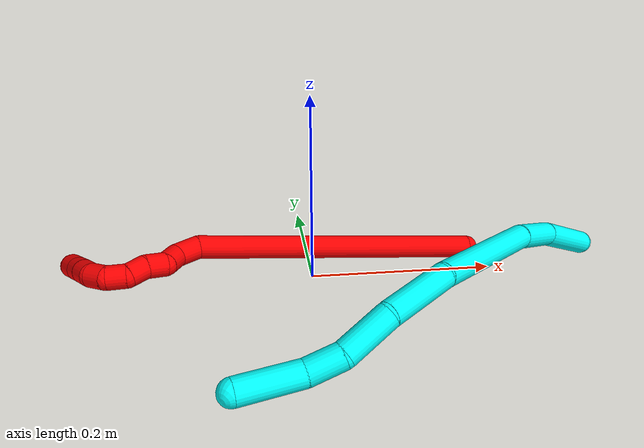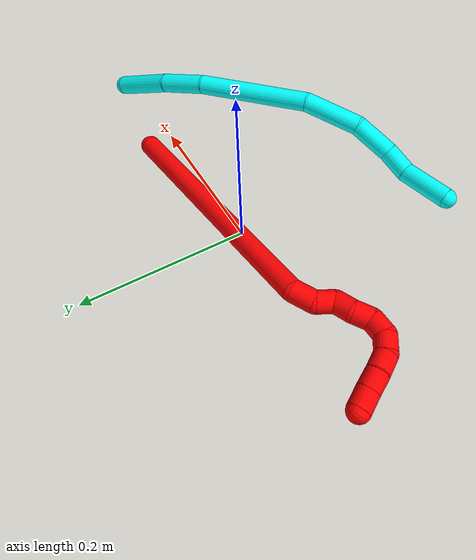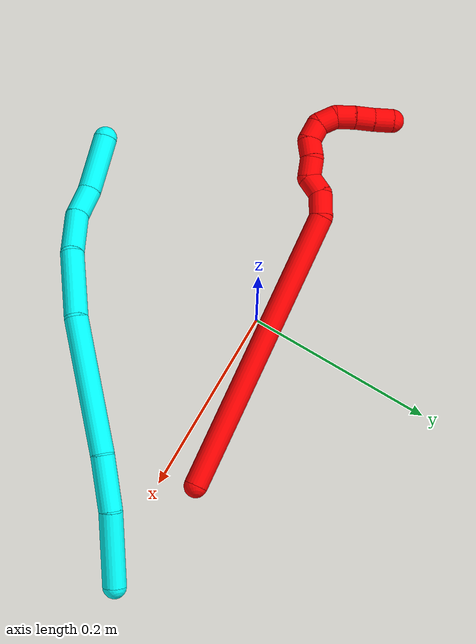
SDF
<sdf version="1.7">
 <world name="default">
  <model name="2">
   <static>0</static>
   <link name="2">
    <collision name="collision-cylinder-e_1_1_4">
     <pose>-0.095933 -0.015489 -0.119954 3.01317 -0.67056 -2.77664</pose>
     <geometry><cylinder><radius>0.0125</radius><length>0.308753</length></cylinder></geometry>
     <surface>
      <friction><ode><mu>1.16</mu><mu2>1.16</mu2><slip1>0</slip1><slip2>0</slip2></ode></friction>
      <contact><ode><kp>1e+06</kp><kd>1</kd><max_vel>0</max_vel><min_depth>0.001</min_depth></ode></contact>
     </surface>
    </collision>
    <visual name="visual-cylinder-e_1_1_4">
     <pose>-0.095933 -0.015489 -0.119954 3.01317 -0.67056 -2.77664</pose>
     <geometry><cylinder><radius>0.0125</radius><length>0.308753</length></cylinder></geometry>
     <material><ambient>1 0 0 1</ambient></material>
    </visual>
    <collision name="collision-cylinder-e_2_4_5">
     <pose>-0.194218 -0.03368 -0.252413 2.92888 -0.18172 -1.41296</pose>
     <geometry><cylinder><radius>0.0125</radius><length>0.026015</length></cylinder></geometry>
     <surface>
      <friction><ode><mu>1.16</mu><mu2>1.16</mu2><slip1>0</slip1><slip2>0</slip2></ode></friction>
      <contact><ode><kp>1e+06</kp><kd>1</kd><max_vel>0</max_vel><min_depth>0.001</min_depth></ode></contact>
     </surface>
    </collision>
    <visual name="visual-cylinder-e_2_4_5">
     <pose>-0.194218 -0.03368 -0.252413 2.92888 -0.18172 -1.41296</pose>
     <geometry><cylinder><radius>0.0125</radius><length>0.026015</length></cylinder></geometry>
     <material><ambient>1 0 0 1</ambient></material>
    </visual>
    <collision name="collision-cylinder-e_3_5_6">
     <pose>-0.193649 -0.041867 -0.273531 2.57442 0.278439 0.896339</pose>
     <geometry><cylinder><radius>0.0125</radius><length>0.021243</length></cylinder></geometry>
     <surface>
      <friction><ode><mu>1.16</mu><mu2>1.16</mu2><slip1>0</slip1><slip2>0</slip2></ode></friction>
      <contact><ode><kp>1e+06</kp><kd>1</kd><max_vel>0</max_vel><min_depth>0.001</min_depth></ode></contact>
     </surface>
    </collision>
    <visual name="visual-cylinder-e_3_5_6">
     <pose>-0.193649 -0.041867 -0.273531 2.57442 0.278439 0.896339</pose>
     <geometry><cylinder><radius>0.0125</radius><length>0.021243</length></cylinder></geometry>
     <material><ambient>1 0 0 1</ambient></material>
    </visual>
    <collision name="collision-cylinder-e_4_6_7">
     <pose>-0.195075 -0.05012 -0.291314 2.84856 -0.425899 -1.94383</pose>
     <geometry><cylinder><radius>0.0125</radius><length>0.021035</length></cylinder></geometry>
     <surface>
      <friction><ode><mu>1.16</mu><mu2>1.16</mu2><slip1>0</slip1><slip2>0</slip2></ode></friction>
      <contact><ode><kp>1e+06</kp><kd>1</kd><max_vel>0</max_vel><min_depth>0.001</min_depth></ode></contact>
     </surface>
    </collision>
    <visual name="visual-cylinder-e_4_6_7">
     <pose>-0.195075 -0.05012 -0.291314 2.84856 -0.425899 -1.94383</pose>
     <geometry><cylinder><radius>0.0125</radius><length>0.021035</length></cylinder></geometry>
     <material><ambient>1 0 0 1</ambient></material>
    </visual>
    <collision name="collision-cylinder-e_5_7_8">
     <pose>-0.199966 -0.055363 -0.310571 2.90095 -0.052542 -0.428009</pose>
     <geometry><cylinder><radius>0.0125</radius><length>0.020802</length></cylinder></geometry>
     <surface>
      <friction><ode><mu>1.16</mu><mu2>1.16</mu2><slip1>0</slip1><slip2>0</slip2></ode></friction>
      <contact><ode><kp>1e+06</kp><kd>1</kd><max_vel>0</max_vel><min_depth>0.001</min_depth></ode></contact>
     </surface>
    </collision>
    <visual name="visual-cylinder-e_5_7_8">
     <pose>-0.199966 -0.055363 -0.310571 2.90095 -0.052542 -0.428009</pose>
     <geometry><cylinder><radius>0.0125</radius><length>0.020802</length></cylinder></geometry>
     <material><ambient>1 0 0 1</ambient></material>
    </visual>
    <collision name="collision-cylinder-e_6_8_9">
     <pose>-0.20662 -0.05753 -0.328873 -3.10414 -0.639014 3.02849</pose>
     <geometry><cylinder><radius>0.0125</radius><length>0.020482</length></cylinder></geometry>
     <surface>
      <friction><ode><mu>1.16</mu><mu2>1.16</mu2><slip1>0</slip1><slip2>0</slip2></ode></friction>
      <contact><ode><kp>1e+06</kp><kd>1</kd><max_vel>0</max_vel><min_depth>0.001</min_depth></ode></contact>
     </surface>
    </collision>
    <visual name="visual-cylinder-e_6_8_9">
     <pose>-0.20662 -0.05753 -0.328873 -3.10414 -0.639014 3.02849</pose>
     <geometry><cylinder><radius>0.0125</radius><length>0.020482</length></cylinder></geometry>
     <material><ambient>1 0 0 1</ambient></material>
    </visual>
    <collision name="collision-cylinder-e_7_9_10">
     <pose>-0.221071 -0.053058 -0.340777 -2.29588 -0.982618 1.74308</pose>
     <geometry><cylinder><radius>0.0125</radius><length>0.020056</length></cylinder></geometry>
     <surface>
      <friction><ode><mu>1.16</mu><mu2>1.16</mu2><slip1>0</slip1><slip2>0</slip2></ode></friction>
      <contact><ode><kp>1e+06</kp><kd>1</kd><max_vel>0</max_vel><min_depth>0.001</min_depth></ode></contact>
     </surface>
    </collision>
    <visual name="visual-cylinder-e_7_9_10">
     <pose>-0.221071 -0.053058 -0.340777 -2.29588 -0.982618 1.74308</pose>
     <geometry><cylinder><radius>0.0125</radius><length>0.020056</length></cylinder></geometry>
     <material><ambient>1 0 0 1</ambient></material>
    </visual>
    <collision name="collision-cylinder-e_8_10_11">
     <pose>-0.237079 -0.042258 -0.344626 -1.59471 -0.857095 0.875313</pose>
     <geometry><cylinder><radius>0.0125</radius><length>0.020279</length></cylinder></geometry>
     <surface>
      <friction><ode><mu>1.16</mu><mu2>1.16</mu2><slip1>0</slip1><slip2>0</slip2></ode></friction>
      <contact><ode><kp>1e+06</kp><kd>1</kd><max_vel>0</max_vel><min_depth>0.001</min_depth></ode></contact>
     </surface>
    </collision>
    <visual name="visual-cylinder-e_8_10_11">
     <pose>-0.237079 -0.042258 -0.344626 -1.59471 -0.857095 0.875313</pose>
     <geometry><cylinder><radius>0.0125</radius><length>0.020279</length></cylinder></geometry>
     <material><ambient>1 0 0 1</ambient></material>
    </visual>
    <collision name="collision-cylinder-e_9_11_12">
     <pose>-0.251746 -0.028217 -0.344679 -1.55653 -0.757439 0.747687</pose>
     <geometry><cylinder><radius>0.0125</radius><length>0.020383</length></cylinder></geometry>
     <surface>
      <friction><ode><mu>1.16</mu><mu2>1.16</mu2><slip1>0</slip1><slip2>0</slip2></ode></friction>
      <contact><ode><kp>1e+06</kp><kd>1</kd><max_vel>0</max_vel><min_depth>0.001</min_depth></ode></contact>
     </surface>
    </collision>
    <visual name="visual-cylinder-e_9_11_12">
     <pose>-0.251746 -0.028217 -0.344679 -1.55653 -0.757439 0.747687</pose>
     <geometry><cylinder><radius>0.0125</radius><length>0.020383</length></cylinder></geometry>
     <material><ambient>1 0 0 1</ambient></material>
    </visual>
    <collision name="collision-cylinder-e_10_12_2">
     <pose>-0.266315 -0.01357 -0.344708 -1.5894 -0.807161 0.820688</pose>
     <geometry><cylinder><radius>0.0125</radius><length>0.020952</length></cylinder></geometry>
     <surface>
      <friction><ode><mu>1.16</mu><mu2>1.16</mu2><slip1>0</slip1><slip2>0</slip2></ode></friction>
      <contact><ode><kp>1e+06</kp><kd>1</kd><max_vel>0</max_vel><min_depth>0.001</min_depth></ode></contact>
     </surface>
    </collision>
    <visual name="visual-cylinder-e_10_12_2">
     <pose>-0.266315 -0.01357 -0.344708 -1.5894 -0.807161 0.820688</pose>
     <geometry><cylinder><radius>0.0125</radius><length>0.020952</length></cylinder></geometry>
     <material><ambient>1 0 0 1</ambient></material>
    </visual>
    <collision name="collision-sphere-2">
     <pose>-0.273882 -0.006326 -0.344843 0 -0 0</pose>
     <geometry><sphere><radius>0.0125</radius></sphere></geometry>
     <surface>
      <friction><ode><mu>1.16</mu><mu2>1.16</mu2><slip1>0</slip1><slip2>0</slip2></ode></friction>
      <contact><ode><kp>1e+06</kp><kd>1</kd><max_vel>0</max_vel><min_depth>0.001</min_depth></ode></contact>
     </surface>
    </collision>
    <visual name="visual-sphere-2">
     <pose>-0.273882 -0.006326 -0.344843 0 -0 0</pose>
     <geometry><sphere><radius>0.0125</radius></sphere></geometry>
     <material><ambient>1 0 0 1</ambient></material>
    </visual>
    <collision name="collision-sphere-12">
     <pose>-0.258748 -0.020813 -0.344573 0 -0 0</pose>
     <geometry><sphere><radius>0.0125</radius></sphere></geometry>
     <surface>
      <friction><ode><mu>1.16</mu><mu2>1.16</mu2><slip1>0</slip1><slip2>0</slip2></ode></friction>
      <contact><ode><kp>1e+06</kp><kd>1</kd><max_vel>0</max_vel><min_depth>0.001</min_depth></ode></contact>
     </surface>
    </collision>
    <visual name="visual-sphere-12">
     <pose>-0.258748 -0.020813 -0.344573 0 -0 0</pose>
     <geometry><sphere><radius>0.0125</radius></sphere></geometry>
     <material><ambient>1 0 0 1</ambient></material>
    </visual>
    <collision name="collision-sphere-11">
     <pose>-0.244744 -0.035622 -0.344785 0 -0 0</pose>
     <geometry><sphere><radius>0.0125</radius></sphere></geometry>
     <surface>
      <friction><ode><mu>1.16</mu><mu2>1.16</mu2><slip1>0</slip1><slip2>0</slip2></ode></friction>
      <contact><ode><kp>1e+06</kp><kd>1</kd><max_vel>0</max_vel><min_depth>0.001</min_depth></ode></contact>
     </surface>
    </collision>
    <visual name="visual-sphere-11">
     <pose>-0.244744 -0.035622 -0.344785 0 -0 0</pose>
     <geometry><sphere><radius>0.0125</radius></sphere></geometry>
     <material><ambient>1 0 0 1</ambient></material>
    </visual>
    <collision name="collision-sphere-10">
     <pose>-0.229414 -0.048894 -0.344467 0 -0 0</pose>
     <geometry><sphere><radius>0.0125</radius></sphere></geometry>
     <surface>
      <friction><ode><mu>1.16</mu><mu2>1.16</mu2><slip1>0</slip1><slip2>0</slip2></ode></friction>
      <contact><ode><kp>1e+06</kp><kd>1</kd><max_vel>0</max_vel><min_depth>0.001</min_depth></ode></contact>
     </surface>
    </collision>
    <visual name="visual-sphere-10">
     <pose>-0.229414 -0.048894 -0.344467 0 -0 0</pose>
     <geometry><sphere><radius>0.0125</radius></sphere></geometry>
     <material><ambient>1 0 0 1</ambient></material>
    </visual>
    <collision name="collision-sphere-9">
     <pose>-0.212728 -0.057222 -0.337087 0 -0 0</pose>
     <geometry><sphere><radius>0.0125</radius></sphere></geometry>
     <surface>
      <friction><ode><mu>1.16</mu><mu2>1.16</mu2><slip1>0</slip1><slip2>0</slip2></ode></friction>
      <contact><ode><kp>1e+06</kp><kd>1</kd><max_vel>0</max_vel><min_depth>0.001</min_depth></ode></contact>
     </surface>
    </collision>
    <visual name="visual-sphere-9">
     <pose>-0.212728 -0.057222 -0.337087 0 -0 0</pose>
     <geometry><sphere><radius>0.0125</radius></sphere></geometry>
     <material><ambient>1 0 0 1</ambient></material>
    </visual>
    <collision name="collision-sphere-4">
     <pose>-0.191867 -0.030979 -0.239908 0 -0 0</pose>
     <geometry><sphere><radius>0.0125</radius></sphere></geometry>
     <surface>
      <friction><ode><mu>1.16</mu><mu2>1.16</mu2><slip1>0</slip1><slip2>0</slip2></ode></friction>
      <contact><ode><kp>1e+06</kp><kd>1</kd><max_vel>0</max_vel><min_depth>0.001</min_depth></ode></contact>
     </surface>
    </collision>
    <visual name="visual-sphere-4">
     <pose>-0.191867 -0.030979 -0.239908 0 -0 0</pose>
     <geometry><sphere><radius>0.0125</radius></sphere></geometry>
     <material><ambient>1 0 0 1</ambient></material>
    </visual>
    <collision name="collision-sphere-1">
     <geometry><sphere><radius>0.0125</radius></sphere></geometry>
     <surface>
      <friction><ode><mu>1.16</mu><mu2>1.16</mu2><slip1>0</slip1><slip2>0</slip2></ode></friction>
      <contact><ode><kp>1e+06</kp><kd>1</kd><max_vel>0</max_vel><min_depth>0.001</min_depth></ode></contact>
     </surface>
    </collision>
    <visual name="visual-sphere-1">
     <geometry><sphere><radius>0.0125</radius></sphere></geometry>
     <material><ambient>1 0 0 1</ambient></material>
    </visual>
    <collision name="collision-sphere-8">
     <pose>-0.200512 -0.057838 -0.320658 0 -0 0</pose>
     <geometry><sphere><radius>0.0125</radius></sphere></geometry>
     <surface>
      <friction><ode><mu>1.16</mu><mu2>1.16</mu2><slip1>0</slip1><slip2>0</slip2></ode></friction>
      <contact><ode><kp>1e+06</kp><kd>1</kd><max_vel>0</max_vel><min_depth>0.001</min_depth></ode></contact>
     </surface>
    </collision>
    <visual name="visual-sphere-8">
     <pose>-0.200512 -0.057838 -0.320658 0 -0 0</pose>
     <geometry><sphere><radius>0.0125</radius></sphere></geometry>
     <material><ambient>1 0 0 1</ambient></material>
    </visual>
    <collision name="collision-sphere-5">
     <pose>-0.196568 -0.03638 -0.264918 0 -0 0</pose>
     <geometry><sphere><radius>0.0125</radius></sphere></geometry>
     <surface>
      <friction><ode><mu>1.16</mu><mu2>1.16</mu2><slip1>0</slip1><slip2>0</slip2></ode></friction>
      <contact><ode><kp>1e+06</kp><kd>1</kd><max_vel>0</max_vel><min_depth>0.001</min_depth></ode></contact>
     </surface>
    </collision>
    <visual name="visual-sphere-5">
     <pose>-0.196568 -0.03638 -0.264918 0 -0 0</pose>
     <geometry><sphere><radius>0.0125</radius></sphere></geometry>
     <material><ambient>1 0 0 1</ambient></material>
    </visual>
    <collision name="collision-sphere-6">
     <pose>-0.19073 -0.047354 -0.282145 0 -0 0</pose>
     <geometry><sphere><radius>0.0125</radius></sphere></geometry>
     <surface>
      <friction><ode><mu>1.16</mu><mu2>1.16</mu2><slip1>0</slip1><slip2>0</slip2></ode></friction>
      <contact><ode><kp>1e+06</kp><kd>1</kd><max_vel>0</max_vel><min_depth>0.001</min_depth></ode></contact>
     </surface>
    </collision>
    <visual name="visual-sphere-6">
     <pose>-0.19073 -0.047354 -0.282145 0 -0 0</pose>
     <geometry><sphere><radius>0.0125</radius></sphere></geometry>
     <material><ambient>1 0 0 1</ambient></material>
    </visual>
    <collision name="collision-sphere-7">
     <pose>-0.19942 -0.052887 -0.300484 0 -0 0</pose>
     <geometry><sphere><radius>0.0125</radius></sphere></geometry>
     <surface>
      <friction><ode><mu>1.16</mu><mu2>1.16</mu2><slip1>0</slip1><slip2>0</slip2></ode></friction>
      <contact><ode><kp>1e+06</kp><kd>1</kd><max_vel>0</max_vel><min_depth>0.001</min_depth></ode></contact>
     </surface>
    </collision>
    <visual name="visual-sphere-7">
     <pose>-0.19942 -0.052887 -0.300484 0 -0 0</pose>
     <geometry><sphere><radius>0.0125</radius></sphere></geometry>
     <material><ambient>1 0 0 1</ambient></material>
    </visual>
    <inertial>
     <pose>-0.142468 -0.025426 -0.193618 0 -0 0</pose>
     <mass>0.5</mass>
     <inertia>
      <ixx>-0.002511</ixx>
      <ixy>0</ixy>
      <ixz>0</ixz>
      <iyy>0.001667</iyy>
      <iyz>0</iyz>
      <izz>0.001757</izz>
     </inertia>
    </inertial>
   </link>
   <pose>0.1845 0.035342 0.01149 -1.10958 0.523492 -0.743257</pose>
  </model>
  <model name="3">
   <static>0</static>
   <link name="3">
    <collision name="collision-cylinder-e_1_1_4">
     <pose>-0.020624 -0.011979 -0.031499 2.7782 -0.549178 -1.98577</pose>
     <geometry><cylinder><radius>0.0125</radius><length>0.07902</length></cylinder></geometry>
     <surface>
      <friction><ode><mu>1.16</mu><mu2>1.16</mu2><slip1>0</slip1><slip2>0</slip2></ode></friction>
      <contact><ode><kp>1e+06</kp><kd>1</kd><max_vel>0</max_vel><min_depth>0.001</min_depth></ode></contact>
     </surface>
    </collision>
    <visual name="visual-cylinder-e_1_1_4">
     <pose>-0.020624 -0.011979 -0.031499 2.7782 -0.549178 -1.98577</pose>
     <geometry><cylinder><radius>0.0125</radius><length>0.07902</length></cylinder></geometry>
     <material><ambient>0.003922 1 0.996078 1</ambient></material>
    </visual>
    <collision name="collision-cylinder-e_2_4_5">
     <pose>-0.05222 -0.030971 -0.088892 2.87706 -0.38826 -1.95175</pose>
     <geometry><cylinder><radius>0.0125</radius><length>0.057968</length></cylinder></geometry>
     <surface>
      <friction><ode><mu>1.16</mu><mu2>1.16</mu2><slip1>0</slip1><slip2>0</slip2></ode></friction>
      <contact><ode><kp>1e+06</kp><kd>1</kd><max_vel>0</max_vel><min_depth>0.001</min_depth></ode></contact>
     </surface>
    </collision>
    <visual name="visual-cylinder-e_2_4_5">
     <pose>-0.05222 -0.030971 -0.088892 2.87706 -0.38826 -1.95175</pose>
     <geometry><cylinder><radius>0.0125</radius><length>0.057968</length></cylinder></geometry>
     <material><ambient>0.003922 1 0.996078 1</ambient></material>
    </visual>
    <collision name="collision-cylinder-e_3_5_6">
     <pose>-0.081136 -0.047214 -0.183939 3.00893 -0.251729 -2.17469</pose>
     <geometry><cylinder><radius>0.0125</radius><length>0.144074</length></cylinder></geometry>
     <surface>
      <friction><ode><mu>1.16</mu><mu2>1.16</mu2><slip1>0</slip1><slip2>0</slip2></ode></friction>
      <contact><ode><kp>1e+06</kp><kd>1</kd><max_vel>0</max_vel><min_depth>0.001</min_depth></ode></contact>
     </surface>
    </collision>
    <visual name="visual-cylinder-e_3_5_6">
     <pose>-0.081136 -0.047214 -0.183939 3.00893 -0.251729 -2.17469</pose>
     <geometry><cylinder><radius>0.0125</radius><length>0.144074</length></cylinder></geometry>
     <material><ambient>0.003922 1 0.996078 1</ambient></material>
    </visual>
    <collision name="collision-cylinder-e_4_6_7">
     <pose>-0.106544 -0.051724 -0.288269 -3.00823 -0.207327 2.00032</pose>
     <geometry><cylinder><radius>0.0125</radius><length>0.072537</length></cylinder></geometry>
     <surface>
      <friction><ode><mu>1.16</mu><mu2>1.16</mu2><slip1>0</slip1><slip2>0</slip2></ode></friction>
      <contact><ode><kp>1e+06</kp><kd>1</kd><max_vel>0</max_vel><min_depth>0.001</min_depth></ode></contact>
     </surface>
    </collision>
    <visual name="visual-cylinder-e_4_6_7">
     <pose>-0.106544 -0.051724 -0.288269 -3.00823 -0.207327 2.00032</pose>
     <geometry><cylinder><radius>0.0125</radius><length>0.072537</length></cylinder></geometry>
     <material><ambient>0.003922 1 0.996078 1</ambient></material>
    </visual>
    <collision name="collision-cylinder-e_5_7_8">
     <pose>-0.117548 -0.036427 -0.346566 -2.7125 -0.138276 0.615413</pose>
     <geometry><cylinder><radius>0.0125</radius><length>0.051339</length></cylinder></geometry>
     <surface>
      <friction><ode><mu>1.16</mu><mu2>1.16</mu2><slip1>0</slip1><slip2>0</slip2></ode></friction>
      <contact><ode><kp>1e+06</kp><kd>1</kd><max_vel>0</max_vel><min_depth>0.001</min_depth></ode></contact>
     </surface>
    </collision>
    <visual name="visual-cylinder-e_5_7_8">
     <pose>-0.117548 -0.036427 -0.346566 -2.7125 -0.138276 0.615413</pose>
     <geometry><cylinder><radius>0.0125</radius><length>0.051339</length></cylinder></geometry>
     <material><ambient>0.003922 1 0.996078 1</ambient></material>
    </visual>
    <collision name="collision-cylinder-e_6_8_9">
     <pose>-0.128296 -0.017608 -0.382821 -2.58128 -0.435204 1.31041</pose>
     <geometry><cylinder><radius>0.0125</radius><length>0.034202</length></cylinder></geometry>
     <surface>
      <friction><ode><mu>1.16</mu><mu2>1.16</mu2><slip1>0</slip1><slip2>0</slip2></ode></friction>
      <contact><ode><kp>1e+06</kp><kd>1</kd><max_vel>0</max_vel><min_depth>0.001</min_depth></ode></contact>
     </surface>
    </collision>
    <visual name="visual-cylinder-e_6_8_9">
     <pose>-0.128296 -0.017608 -0.382821 -2.58128 -0.435204 1.31041</pose>
     <geometry><cylinder><radius>0.0125</radius><length>0.034202</length></cylinder></geometry>
     <material><ambient>0.003922 1 0.996078 1</ambient></material>
    </visual>
    <collision name="collision-cylinder-e_7_9_2">
     <pose>-0.152007 -0.003116 -0.420748 -2.89461 -0.573158 2.3443</pose>
     <geometry><cylinder><radius>0.0125</radius><length>0.060861</length></cylinder></geometry>
     <surface>
      <friction><ode><mu>1.16</mu><mu2>1.16</mu2><slip1>0</slip1><slip2>0</slip2></ode></friction>
      <contact><ode><kp>1e+06</kp><kd>1</kd><max_vel>0</max_vel><min_depth>0.001</min_depth></ode></contact>
     </surface>
    </collision>
    <visual name="visual-cylinder-e_7_9_2">
     <pose>-0.152007 -0.003116 -0.420748 -2.89461 -0.573158 2.3443</pose>
     <geometry><cylinder><radius>0.0125</radius><length>0.060861</length></cylinder></geometry>
     <material><ambient>0.003922 1 0.996078 1</ambient></material>
    </visual>
    <collision name="collision-sphere-2">
     <pose>-0.168509 0.003135 -0.445539 0 -0 0</pose>
     <geometry><sphere><radius>0.0125</radius></sphere></geometry>
     <surface>
      <friction><ode><mu>1.16</mu><mu2>1.16</mu2><slip1>0</slip1><slip2>0</slip2></ode></friction>
      <contact><ode><kp>1e+06</kp><kd>1</kd><max_vel>0</max_vel><min_depth>0.001</min_depth></ode></contact>
     </surface>
    </collision>
    <visual name="visual-sphere-2">
     <pose>-0.168509 0.003135 -0.445539 0 -0 0</pose>
     <geometry><sphere><radius>0.0125</radius></sphere></geometry>
     <material><ambient>0.003922 1 0.996078 1</ambient></material>
    </visual>
    <collision name="collision-sphere-9">
     <pose>-0.135505 -0.009367 -0.395956 0 -0 0</pose>
     <geometry><sphere><radius>0.0125</radius></sphere></geometry>
     <surface>
      <friction><ode><mu>1.16</mu><mu2>1.16</mu2><slip1>0</slip1><slip2>0</slip2></ode></friction>
      <contact><ode><kp>1e+06</kp><kd>1</kd><max_vel>0</max_vel><min_depth>0.001</min_depth></ode></contact>
     </surface>
    </collision>
    <visual name="visual-sphere-9">
     <pose>-0.135505 -0.009367 -0.395956 0 -0 0</pose>
     <geometry><sphere><radius>0.0125</radius></sphere></geometry>
     <material><ambient>0.003922 1 0.996078 1</ambient></material>
    </visual>
    <collision name="collision-sphere-4">
     <pose>-0.041247 -0.023957 -0.062999 0 -0 0</pose>
     <geometry><sphere><radius>0.0125</radius></sphere></geometry>
     <surface>
      <friction><ode><mu>1.16</mu><mu2>1.16</mu2><slip1>0</slip1><slip2>0</slip2></ode></friction>
      <contact><ode><kp>1e+06</kp><kd>1</kd><max_vel>0</max_vel><min_depth>0.001</min_depth></ode></contact>
     </surface>
    </collision>
    <visual name="visual-sphere-4">
     <pose>-0.041247 -0.023957 -0.062999 0 -0 0</pose>
     <geometry><sphere><radius>0.0125</radius></sphere></geometry>
     <material><ambient>0.003922 1 0.996078 1</ambient></material>
    </visual>
    <collision name="collision-sphere-1">
     <geometry><sphere><radius>0.0125</radius></sphere></geometry>
     <surface>
      <friction><ode><mu>1.16</mu><mu2>1.16</mu2><slip1>0</slip1><slip2>0</slip2></ode></friction>
      <contact><ode><kp>1e+06</kp><kd>1</kd><max_vel>0</max_vel><min_depth>0.001</min_depth></ode></contact>
     </surface>
    </collision>
    <visual name="visual-sphere-1">
     <geometry><sphere><radius>0.0125</radius></sphere></geometry>
     <material><ambient>0.003922 1 0.996078 1</ambient></material>
    </visual>
    <collision name="collision-sphere-8">
     <pose>-0.121086 -0.025849 -0.369685 0 -0 0</pose>
     <geometry><sphere><radius>0.0125</radius></sphere></geometry>
     <surface>
      <friction><ode><mu>1.16</mu><mu2>1.16</mu2><slip1>0</slip1><slip2>0</slip2></ode></friction>
      <contact><ode><kp>1e+06</kp><kd>1</kd><max_vel>0</max_vel><min_depth>0.001</min_depth></ode></contact>
     </surface>
    </collision>
    <visual name="visual-sphere-8">
     <pose>-0.121086 -0.025849 -0.369685 0 -0 0</pose>
     <geometry><sphere><radius>0.0125</radius></sphere></geometry>
     <material><ambient>0.003922 1 0.996078 1</ambient></material>
    </visual>
    <collision name="collision-sphere-5">
     <pose>-0.063193 -0.037986 -0.114786 0 -0 0</pose>
     <geometry><sphere><radius>0.0125</radius></sphere></geometry>
     <surface>
      <friction><ode><mu>1.16</mu><mu2>1.16</mu2><slip1>0</slip1><slip2>0</slip2></ode></friction>
      <contact><ode><kp>1e+06</kp><kd>1</kd><max_vel>0</max_vel><min_depth>0.001</min_depth></ode></contact>
     </surface>
    </collision>
    <visual name="visual-sphere-5">
     <pose>-0.063193 -0.037986 -0.114786 0 -0 0</pose>
     <geometry><sphere><radius>0.0125</radius></sphere></geometry>
     <material><ambient>0.003922 1 0.996078 1</ambient></material>
    </visual>
    <collision name="collision-sphere-6">
     <pose>-0.099078 -0.056443 -0.253093 0 -0 0</pose>
     <geometry><sphere><radius>0.0125</radius></sphere></geometry>
     <surface>
      <friction><ode><mu>1.16</mu><mu2>1.16</mu2><slip1>0</slip1><slip2>0</slip2></ode></friction>
      <contact><ode><kp>1e+06</kp><kd>1</kd><max_vel>0</max_vel><min_depth>0.001</min_depth></ode></contact>
     </surface>
    </collision>
    <visual name="visual-sphere-6">
     <pose>-0.099078 -0.056443 -0.253093 0 -0 0</pose>
     <geometry><sphere><radius>0.0125</radius></sphere></geometry>
     <material><ambient>0.003922 1 0.996078 1</ambient></material>
    </visual>
    <collision name="collision-sphere-7">
     <pose>-0.11401 -0.047005 -0.323446 0 -0 0</pose>
     <geometry><sphere><radius>0.0125</radius></sphere></geometry>
     <surface>
      <friction><ode><mu>1.16</mu><mu2>1.16</mu2><slip1>0</slip1><slip2>0</slip2></ode></friction>
      <contact><ode><kp>1e+06</kp><kd>1</kd><max_vel>0</max_vel><min_depth>0.001</min_depth></ode></contact>
     </surface>
    </collision>
    <visual name="visual-sphere-7">
     <pose>-0.11401 -0.047005 -0.323446 0 -0 0</pose>
     <geometry><sphere><radius>0.0125</radius></sphere></geometry>
     <material><ambient>0.003922 1 0.996078 1</ambient></material>
    </visual>
    <inertial>
     <pose>-0.087497 -0.031916 -0.223091 0 -0 0</pose>
     <mass>0.5</mass>
     <inertia><ixx>-0.000388</ixx><ixy>0</ixy><ixz>0</ixz><iyy>7e-06</iyy><iyz>0</iyz><izz>0.000115</izz></inertia>
    </inertial>
   </link>
   <pose>0.316329 0.017432 0.017039 -1.32184 0.57331 -0.567952</pose>
  </model>
 </world>
</sdf>
